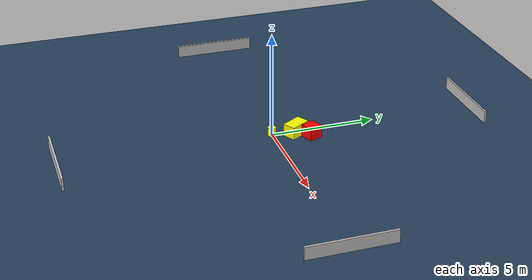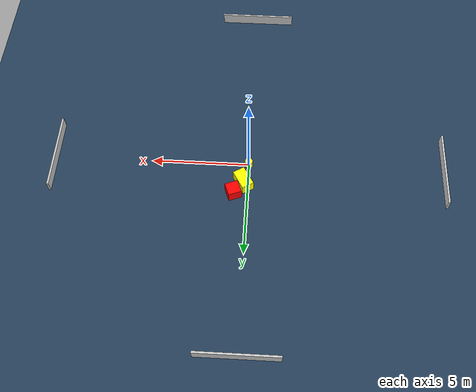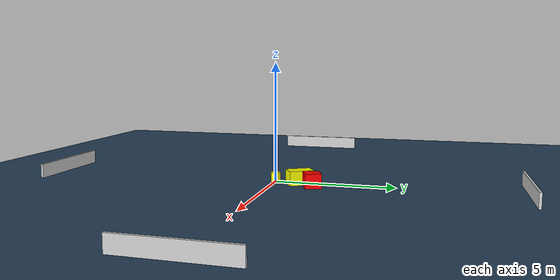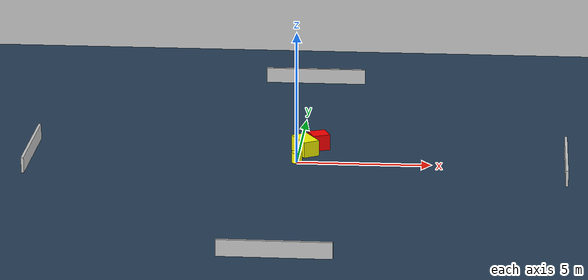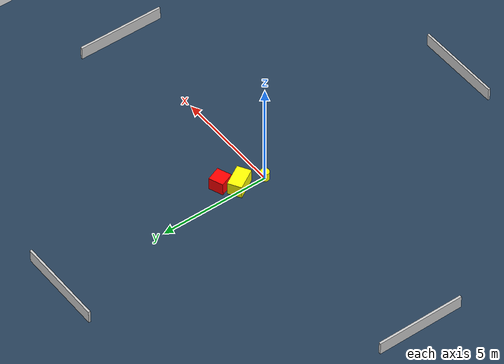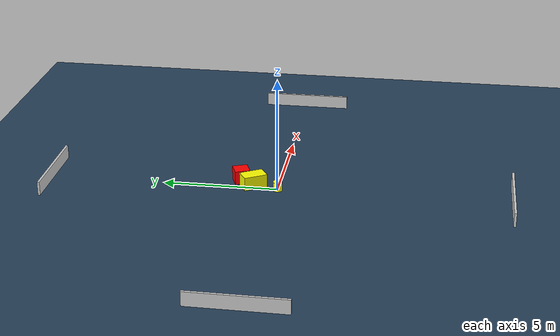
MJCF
<?xml version="1.0" ?>
<mujoco model="generated_environment">
  <option timestep="0.01" integrator="RK4" cone="elliptic"/>
  <default>
    <geom density="1"/>
  </default>
  <asset>
    <texture builtin="gradient" height="3072" name="skybox" rgb1="0.3 0.5 0.7" rgb2="0 0 0" type="skybox" width="512"/>
    <texture builtin="checker" height="300" name="groundplane" rgb1="0.2 0.3 0.4" rgb2="0.1 0.2 0.3" type="2d" width="300"/>
    <material name="groundplane" reflectance="0.2" texrepeat="5 5" texture="groundplane"/>
  </asset>
  <worldbody>
    <light dir="0 0 -1" directional="true" pos="0 0 1.5"/>
    <geom condim="3" friction="0.5 0.005 0.001" material="groundplane" name="floor" pos="0 0 0" size="0 0 0.05" type="plane"/>
    <body name="walls">
      <geom name="wall_1" condim="4" pos="-10.0 0.0 0.3" rgba="0.800000011920929 0.800000011920929 0.800000011920929 1.0" size="0.05 2.0 0.3" type="box"/>
      <geom name="wall_2" condim="4" pos="10.0 0.0 0.3" rgba="0.800000011920929 0.800000011920929 0.800000011920929 1.0" size="0.05 2.0 0.3" type="box"/>
      <geom name="wall_3" condim="4" pos="0.0 -10.0 0.3" rgba="0.800000011920929 0.800000011920929 0.800000011920929 1.0" size="2.0 0.05 0.3" type="box"/>
      <geom name="wall_4" condim="4" pos="0.0 10.0 0.3" rgba="0.800000011920929 0.800000011920929 0.800000011920929 1.0" size="2.0 0.05 0.3" type="box"/>
    </body>
    <body name="robot">
      <joint name="joint_x" type="slide" pos="0 0 0" axis="1 0 0"/>
      <joint name="joint_y" type="slide" pos="0 0 0" axis="0 1 0"/>
      <geom name="robot" type="cylinder" pos="0.0 0.0 0.2" size="0.2 0.2 0.0" mass="5.0" friction="1.0 0.005 0.0001" condim="4" rgba="1.0 1.0 0.0 1.0"/>
    </body>
    <body name="obstacle_1_movable">
      <geom name="obstacle_1_movable" condim="4" pos="0.23182542502074052 1.1011184046658964 0.3" euler="0 0 300.90632604529185" friction="0.0 0.005 0.001" rgba="1.0 1.0 0.0 1.0" size="0.5197997873141532 0.3164184856618446 0.3" type="box" mass="0.1"/>
      <joint type="free"/>
    </body>
    <body name="obstacle_2_static">
      <geom name="obstacle_2_static" condim="4" pos="0.7060841407102803 1.7115660668105122 0.3" euler="0 0 21.543098509086015" friction="0.0 0.005 0.001" rgba="1.0 0.0 0.0 1.0" size="0.33389926407520054 0.3324560537054231 0.3" type="box"/>
    </body>
  </worldbody>
  <actuator>
    <motor name="actuator_x" joint="joint_x" gear="1" ctrlrange="-1 1"/>
    <motor name="actuator_y" joint="joint_y" gear="1" ctrlrange="-1 1"/>
  </actuator>
</mujoco>
